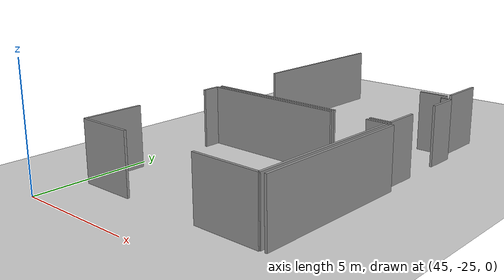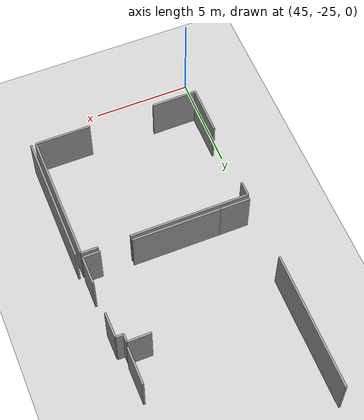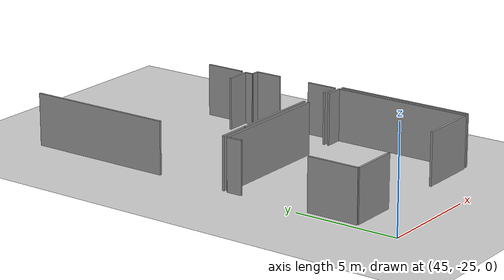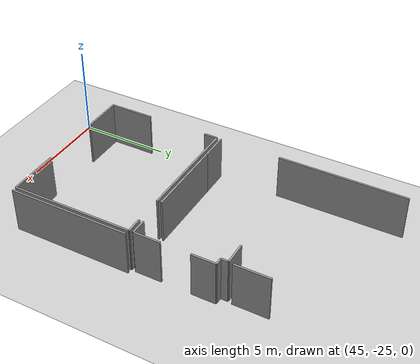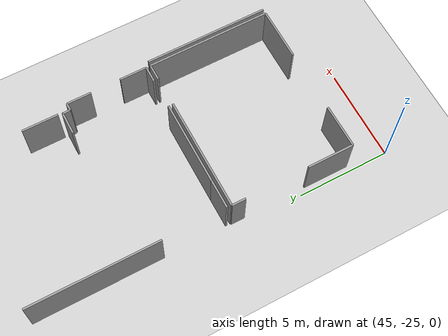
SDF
<sdf version="1.6">
 <world name="default">
  <model name="ground_plane">
   <static>1</static>
   <link name="link">
    <collision name="collision">
     <geometry><plane><normal>0 0 1</normal><size>100 100</size></plane></geometry>
     <surface><friction><ode><mu>100</mu><mu2>50</mu2></ode></friction></surface>
    </collision>
    <visual name="visual">
     <cast_shadows>0</cast_shadows>
     <geometry><plane><normal>0 0 1</normal><size>100 100</size></plane></geometry>
     <material>
      <script><uri>file://media/materials/scripts/gazebo.material</uri><name>Gazebo/Grey</name></script>
     </material>
    </visual>
   </link>
  </model>
  <model name="50010540">
   <static>1</static>
   <link name="Wall_298">
    <collision name="Wall_298_Collision">
     <geometry><box><size>1.54562845177 0.1 2.5</size></box></geometry>
     <pose>0.772814225883 0 1.25 0 0 0</pose>
    </collision>
    <visual name="Wall_298_Visual">
     <pose>0.772814225883 0 1.25 0 0 0</pose>
     <geometry><box><size>1.54562845177 0.1 2.5</size></box></geometry>
     <material>
      <script><uri>file://media/materials/scripts/gazebo.material</uri><name>Gazebo/Grey</name></script>
      <ambient>1 1 1 1</ambient>
     </material>
    </visual>
    <pose>109.40850477 -38.73744018 0 0 0 3.14159265359</pose>
   </link>
   <link name="Wall_299">
    <collision name="Wall_299_Collision">
     <geometry><box><size>6.99091816177 0.1 2.5</size></box></geometry>
     <pose>3.49545908088 0 1.25 0 0 0</pose>
    </collision>
    <visual name="Wall_299_Visual">
     <pose>3.49545908088 0 1.25 0 0 0</pose>
     <geometry><box><size>6.99091816177 0.1 2.5</size></box></geometry>
     <material>
      <script><uri>file://media/materials/scripts/gazebo.material</uri><name>Gazebo/Grey</name></script>
      <ambient>1 1 1 1</ambient>
     </material>
    </visual>
    <pose>107.862876318 -35.3118902807 0 0 0 1.57079632679</pose>
   </link>
   <link name="Wall_305">
    <collision name="Wall_305_Collision">
     <geometry><box><size>1.19862469574 0.1 2.5</size></box></geometry>
     <pose>0.599312347868 0 1.25 0 0 0</pose>
    </collision>
    <visual name="Wall_305_Visual">
     <pose>0.599312347868 0 1.25 0 0 0</pose>
     <geometry><box><size>1.19862469574 0.1 2.5</size></box></geometry>
     <material>
      <script><uri>file://media/materials/scripts/gazebo.material</uri><name>Gazebo/Grey</name></script>
      <ambient>1 1 1 1</ambient>
     </material>
    </visual>
    <pose>114.819475427 -33.959592493 0 0 0 0.0</pose>
   </link>
   <link name="Wall_306">
    <collision name="Wall_306_Collision">
     <geometry><box><size>0.403439531736 0.1 2.5</size></box></geometry>
     <pose>0.201719765868 0 1.25 0 0 0</pose>
    </collision>
    <visual name="Wall_306_Visual">
     <pose>0.201719765868 0 1.25 0 0 0</pose>
     <geometry><box><size>0.403439531736 0.1 2.5</size></box></geometry>
     <material>
      <script><uri>file://media/materials/scripts/gazebo.material</uri><name>Gazebo/Grey</name></script>
      <ambient>1 1 1 1</ambient>
     </material>
    </visual>
    <pose>116.018100123 -33.959592493 0 0 0 -1.57079632679</pose>
   </link>
   <link name="Wall_307">
    <collision name="Wall_307_Collision">
     <geometry><box><size>0.401660025294 0.1 2.5</size></box></geometry>
     <pose>0.200830012647 0 1.25 0 0 0</pose>
    </collision>
    <visual name="Wall_307_Visual">
     <pose>0.200830012647 0 1.25 0 0 0</pose>
     <geometry><box><size>0.401660025294 0.1 2.5</size></box></geometry>
     <material>
      <script><uri>file://media/materials/scripts/gazebo.material</uri><name>Gazebo/Grey</name></script>
      <ambient>1 1 1 1</ambient>
     </material>
    </visual>
    <pose>116.018100123 -34.3630320248 0 0 0 0.0</pose>
   </link>
   <link name="Wall_308">
    <collision name="Wall_308_Collision">
     <geometry><box><size>1.30666615824 0.1 2.5</size></box></geometry>
     <pose>0.653333079118 0 1.25 0 0 0</pose>
    </collision>
    <visual name="Wall_308_Visual">
     <pose>0.653333079118 0 1.25 0 0 0</pose>
     <geometry><box><size>1.30666615824 0.1 2.5</size></box></geometry>
     <material>
      <script><uri>file://media/materials/scripts/gazebo.material</uri><name>Gazebo/Grey</name></script>
      <ambient>1 1 1 1</ambient>
     </material>
    </visual>
    <pose>116.419760148 -34.3630320248 0 0 0 -1.57079632679</pose>
   </link>
   <link name="Wall_309">
    <collision name="Wall_309_Collision">
     <geometry><box><size>1.46275429465 0.1 2.5</size></box></geometry>
     <pose>0.731377147324 0 1.25 0 0 0</pose>
    </collision>
    <visual name="Wall_309_Visual">
     <pose>0.731377147324 0 1.25 0 0 0</pose>
     <geometry><box><size>1.46275429465 0.1 2.5</size></box></geometry>
     <material>
      <script><uri>file://media/materials/scripts/gazebo.material</uri><name>Gazebo/Grey</name></script>
      <ambient>1 1 1 1</ambient>
     </material>
    </visual>
    <pose>116.419760148 -37.2825665567 0 0 0 -1.57079632679</pose>
   </link>
   <link name="Wall_310">
    <collision name="Wall_310_Collision">
     <geometry><box><size>0.871958156177 0.1 2.5</size></box></geometry>
     <pose>0.435979078089 0 1.25 0 0 0</pose>
    </collision>
    <visual name="Wall_310_Visual">
     <pose>0.435979078089 0 1.25 0 0 0</pose>
     <geometry><box><size>0.871958156177 0.1 2.5</size></box></geometry>
     <material>
      <script><uri>file://media/materials/scripts/gazebo.material</uri><name>Gazebo/Grey</name></script>
      <ambient>1 1 1 1</ambient>
     </material>
    </visual>
    <pose>116.419760148 -38.7453208514 0 0 0 3.14159265359</pose>
   </link>
   <link name="Wall_311">
    <collision name="Wall_311_Collision">
     <geometry><box><size>4.53266397172 0.1 2.5</size></box></geometry>
     <pose>2.26633198586 0 1.25 0 0 0</pose>
    </collision>
    <visual name="Wall_311_Visual">
     <pose>2.26633198586 0 1.25 0 0 0</pose>
     <geometry><box><size>4.53266397172 0.1 2.5</size></box></geometry>
     <material>
      <script><uri>file://media/materials/scripts/gazebo.material</uri><name>Gazebo/Grey</name></script>
      <ambient>1 1 1 1</ambient>
     </material>
    </visual>
    <pose>113.941161891 -38.7453208514 0 0 0 3.1398540126</pose>
   </link>
   <link name="Wall_312">
    <collision name="Wall_312_Collision">
     <geometry><box><size>2.49524935334 0.1 2.5</size></box></geometry>
     <pose>1.24762467667 0 1.25 0 0 0</pose>
    </collision>
    <visual name="Wall_312_Visual">
     <pose>1.24762467667 0 1.25 0 0 0</pose>
     <geometry><box><size>2.49524935334 0.1 2.5</size></box></geometry>
     <material>
      <script><uri>file://media/materials/scripts/gazebo.material</uri><name>Gazebo/Grey</name></script>
      <ambient>1 1 1 1</ambient>
     </material>
    </visual>
    <pose>107.851436634 -45.661372635 0 0 0 1.57079632679</pose>
   </link>
   <link name="Wall_313">
    <collision name="Wall_313_Collision">
     <geometry><box><size>0.750697502971 0.1 2.5</size></box></geometry>
     <pose>0.375348751486 0 1.25 0 0 0</pose>
    </collision>
    <visual name="Wall_313_Visual">
     <pose>0.375348751486 0 1.25 0 0 0</pose>
     <geometry><box><size>0.750697502971 0.1 2.5</size></box></geometry>
     <material>
      <script><uri>file://media/materials/scripts/gazebo.material</uri><name>Gazebo/Grey</name></script>
      <ambient>1 1 1 1</ambient>
     </material>
    </visual>
    <pose>107.851436634 -39.7321842806 0 0 0 1.57079632679</pose>
   </link>
   <link name="Wall_314">
    <collision name="Wall_314_Collision">
     <geometry><box><size>6.09608063706 0.1 2.5</size></box></geometry>
     <pose>3.04804031853 0 1.25 0 0 0</pose>
    </collision>
    <visual name="Wall_314_Visual">
     <pose>3.04804031853 0 1.25 0 0 0</pose>
     <geometry><box><size>6.09608063706 0.1 2.5</size></box></geometry>
     <material>
      <script><uri>file://media/materials/scripts/gazebo.material</uri><name>Gazebo/Grey</name></script>
      <ambient>1 1 1 1</ambient>
     </material>
    </visual>
    <pose>107.851436634 -38.9814867776 0 0 0 0.0</pose>
   </link>
   <link name="Wall_315">
    <collision name="Wall_315_Collision">
     <geometry><box><size>0.871958156177 0.1 2.5</size></box></geometry>
     <pose>0.435979078089 0 1.25 0 0 0</pose>
    </collision>
    <visual name="Wall_315_Visual">
     <pose>0.435979078089 0 1.25 0 0 0</pose>
     <geometry><box><size>0.871958156177 0.1 2.5</size></box></geometry>
     <material>
      <script><uri>file://media/materials/scripts/gazebo.material</uri><name>Gazebo/Grey</name></script>
      <ambient>1 1 1 1</ambient>
     </material>
    </visual>
    <pose>115.555428448 -38.9814867776 0 0 0 0.0</pose>
   </link>
   <link name="Wall_316">
    <collision name="Wall_316_Collision">
     <geometry><box><size>6.67073410996 0.1 2.5</size></box></geometry>
     <pose>3.33536705498 0 1.25 0 0 0</pose>
    </collision>
    <visual name="Wall_316_Visual">
     <pose>3.33536705498 0 1.25 0 0 0</pose>
     <geometry><box><size>6.67073410996 0.1 2.5</size></box></geometry>
     <material>
      <script><uri>file://media/materials/scripts/gazebo.material</uri><name>Gazebo/Grey</name></script>
      <ambient>1 1 1 1</ambient>
     </material>
    </visual>
    <pose>116.427386604 -38.9814867776 0 0 0 -1.57079632679</pose>
   </link>
   <link name="Wall_317">
    <collision name="Wall_317_Collision">
     <geometry><box><size>2.82941524147 0.1 2.5</size></box></geometry>
     <pose>1.41470762074 0 1.25 0 0 0</pose>
    </collision>
    <visual name="Wall_317_Visual">
     <pose>1.41470762074 0 1.25 0 0 0</pose>
     <geometry><box><size>2.82941524147 0.1 2.5</size></box></geometry>
     <material>
      <script><uri>file://media/materials/scripts/gazebo.material</uri><name>Gazebo/Grey</name></script>
      <ambient>1 1 1 1</ambient>
     </material>
    </visual>
    <pose>116.427386604 -45.6522208876 0 0 0 3.14159265359</pose>
   </link>
   <link name="Wall_318">
    <collision name="Wall_318_Collision">
     <geometry><box><size>2.3286292696 0.1 2.5</size></box></geometry>
     <pose>1.1643146348 0 1.25 0 0 0</pose>
    </collision>
    <visual name="Wall_318_Visual">
     <pose>1.1643146348 0 1.25 0 0 0</pose>
     <geometry><box><size>2.3286292696 0.1 2.5</size></box></geometry>
     <material>
      <script><uri>file://media/materials/scripts/gazebo.material</uri><name>Gazebo/Grey</name></script>
      <ambient>1 1 1 1</ambient>
     </material>
    </visual>
    <pose>110.18004792 -45.6522208876 0 0 0 -3.13766254282</pose>
   </link>
   <link name="Wall_319">
    <collision name="Wall_319_Collision">
     <geometry><box><size>6.66730220468 0.1 2.5</size></box></geometry>
     <pose>3.33365110234 0 1.25 0 0 0</pose>
    </collision>
    <visual name="Wall_319_Visual">
     <pose>3.33365110234 0 1.25 0 0 0</pose>
     <geometry><box><size>6.66730220468 0.1 2.5</size></box></geometry>
     <material>
      <script><uri>file://media/materials/scripts/gazebo.material</uri><name>Gazebo/Grey</name></script>
      <ambient>1 1 1 1</ambient>
     </material>
    </visual>
    <pose>116.676517506 -45.6542546092 0 0 0 1.57079632679</pose>
   </link>
   <link name="Wall_344">
    <collision name="Wall_344_Collision">
     <geometry><box><size>1.9228838173 0.1 2.5</size></box></geometry>
     <pose>0.961441908648 0 1.25 0 0 0</pose>
    </collision>
    <visual name="Wall_344_Visual">
     <pose>0.961441908648 0 1.25 0 0 0</pose>
     <geometry><box><size>1.9228838173 0.1 2.5</size></box></geometry>
     <material>
      <script><uri>file://media/materials/scripts/gazebo.material</uri><name>Gazebo/Grey</name></script>
      <ambient>1 1 1 1</ambient>
     </material>
    </visual>
    <pose>116.072756392 -33.7235536744 0 0 0 1.57079632679</pose>
   </link>
   <pose>-62.5 22.811372635 0 0 0 0</pose>
  </model>
 </world>
</sdf>
